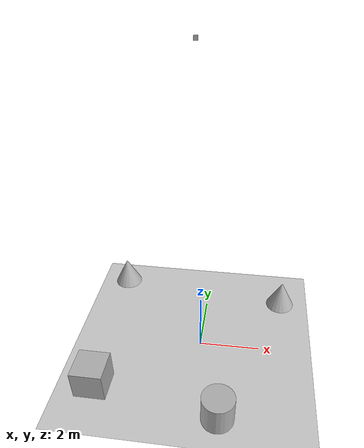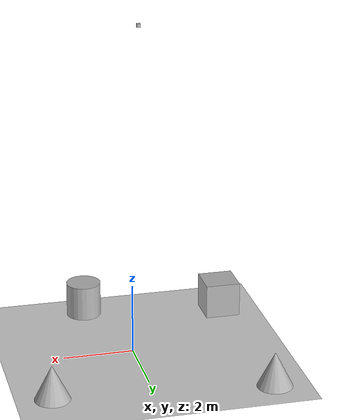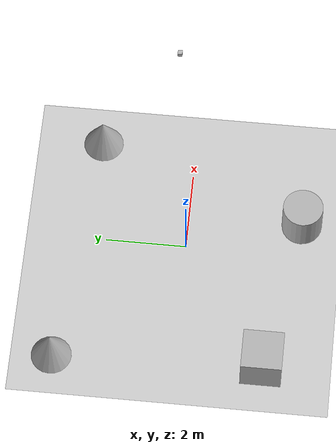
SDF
<sdf version="1.10">
 <world name="empty">
  <physics name="1ms" type="ignored">
   <max_step_size>0.001</max_step_size>
   <real_time_factor>1</real_time_factor>
   <real_time_update_rate>1000</real_time_update_rate>
  </physics>
  <plugin name="gz::sim::systems::Physics" filename="gz-sim-physics-system"/>
  <plugin name="gz::sim::systems::UserCommands" filename="gz-sim-user-commands-system"/>
  <plugin name="gz::sim::systems::SceneBroadcaster" filename="gz-sim-scene-broadcaster-system"/>
  <plugin name="gz::sim::systems::Contact" filename="gz-sim-contact-system"/>
  <gravity>0 0 -9.8000000000000007</gravity>
  <magnetic_field>5.5644999999999998e-06 2.2875799999999999e-05 -4.2388400000000002e-05</magnetic_field>
  <atmosphere type="adiabatic"/>
  <scene>
   <ambient>0.400000006 0.400000006 0.400000006 1</ambient>
   <background>0.699999988 0.699999988 0.699999988 1</background>
   <shadows>true</shadows>
  </scene>
  <model name="ground_plane">
   <static>true</static>
   <link name="link">
    <collision name="collision">
     <geometry><plane><normal>0 0 1</normal><size>100 100</size></plane></geometry>
    </collision>
    <visual name="visual">
     <geometry><plane><normal>0 0 1</normal><size>100 100</size></plane></geometry>
     <material>
      <ambient>0.800000012 0.800000012 0.800000012 1</ambient>
      <diffuse>0.800000012 0.800000012 0.800000012 1</diffuse>
      <specular>0.800000012 0.800000012 0.800000012 1</specular>
     </material>
    </visual>
    <inertial>
     <mass>1</mass>
     <inertia><ixx>1</ixx><ixy>0</ixy><ixz>0</ixz><iyy>1</iyy><iyz>0</iyz><izz>1</izz></inertia>
    </inertial>
   </link>
  </model>
  <model name="cone">
   <pose>2.743606549232906 2.3648827890543491 0.5 0 0 0</pose>
   <link name="cone_link">
    <inertial>
     <inertia>
      <ixx>0.074999999999999997</ixx>
      <ixy>0</ixy>
      <ixz>0</ixz>
      <iyy>0.074999999999999997</iyy>
      <iyz>0</iyz>
      <izz>0.074999999999999997</izz>
     </inertia>
     <mass>1</mass>
    </inertial>
    <collision name="cone_collision">
     <geometry><cone><radius>0.5</radius><length>1</length></cone></geometry>
    </collision>
    <visual name="cone_visual">
     <geometry><cone><radius>0.5</radius><length>1</length></cone></geometry>
     <material>
      <ambient>0.300000012 0.300000012 0.300000012 1</ambient>
      <diffuse>0.699999988 0.699999988 0.699999988 1</diffuse>
      <specular>1 1 1 1</specular>
     </material>
    </visual>
   </link>
   <static>false</static>
  </model>
  <model name="box">
   <pose>-3.1017676951650444 -2.1557709851962565 0.5 0 0 0</pose>
   <link name="box_link">
    <inertial>
     <inertia><ixx>0.16666</ixx><ixy>0</ixy><ixz>0</ixz><iyy>0.16666</iyy><iyz>0</iyz><izz>0.16666</izz></inertia>
     <mass>1</mass>
    </inertial>
    <collision name="box_collision"><geometry><box><size>1 1 1</size></box></geometry></collision>
    <visual name="box_visual">
     <geometry><box><size>1 1 1</size></box></geometry>
     <material>
      <ambient>0.300000012 0.300000012 0.300000012 1</ambient>
      <diffuse>0.699999988 0.699999988 0.699999988 1</diffuse>
      <specular>1 1 1 1</specular>
     </material>
    </visual>
   </link>
   <static>false</static>
  </model>
  <model name="cylinder">
   <pose>0.85750009246107783 -2.8465666803540017 0.5 0 0 0</pose>
   <link name="cylinder_link">
    <inertial>
     <inertia>
      <ixx>0.14580000000000001</ixx>
      <ixy>0</ixy>
      <ixz>0</ixz>
      <iyy>0.14580000000000001</iyy>
      <iyz>0</iyz>
      <izz>0.125</izz>
     </inertia>
     <mass>1</mass>
    </inertial>
    <collision name="cylinder_collision">
     <geometry><cylinder><radius>0.5</radius><length>1</length></cylinder></geometry>
    </collision>
    <visual name="cylinder_visual">
     <geometry><cylinder><radius>0.5</radius><length>1</length></cylinder></geometry>
     <material>
      <ambient>0.300000012 0.300000012 0.300000012 1</ambient>
      <diffuse>0.699999988 0.699999988 0.699999988 1</diffuse>
      <specular>1 1 1 1</specular>
     </material>
    </visual>
   </link>
   <static>false</static>
  </model>
  <model name="cone_0">
   <pose>-3.2806896817307227 3.0044577107294135 0.5 0 0 0</pose>
   <link name="cone_link">
    <inertial>
     <inertia>
      <ixx>0.074999999999999997</ixx>
      <ixy>0</ixy>
      <ixz>0</ixz>
      <iyy>0.074999999999999997</iyy>
      <iyz>0</iyz>
      <izz>0.074999999999999997</izz>
     </inertia>
     <mass>1</mass>
    </inertial>
    <collision name="cone_collision">
     <geometry><cone><radius>0.5</radius><length>1</length></cone></geometry>
    </collision>
    <visual name="cone_visual">
     <geometry><cone><radius>0.5</radius><length>1</length></cone></geometry>
     <material>
      <ambient>0.300000012 0.300000012 0.300000012 1</ambient>
      <diffuse>0.699999988 0.699999988 0.699999988 1</diffuse>
      <specular>1 1 1 1</specular>
     </material>
    </visual>
   </link>
   <static>false</static>
  </model>
  <light name="sun" type="directional">
   <pose>0 0 10 0 0 0</pose>
   <intensity>1</intensity>
   <direction>-0.5 0.10000000000000001 -0.90000000000000002</direction>
   <diffuse>0.800000012 0.800000012 0.800000012 1</diffuse>
   <specular>0.200000003 0.200000003 0.200000003 1</specular>
   <attenuation>
    <range>1000</range>
    <linear>0.01</linear>
    <constant>0.90000000000000002</constant>
    <quadratic>0.001</quadratic>
   </attenuation>
   <spot><inner_angle>0</inner_angle><outer_angle>0</outer_angle><falloff>0</falloff></spot>
  </light>
  <model name="aerial_rgbd_camera">
   <pose>-0.22981178760528564 0.081793002784252167 9.6025075912475586 3.1415899979989477 1.57079000476762 3.1415899979989477</pose>
   <link name="link">
    <pose>0.050000000000000003 0.050000000000000003 0.050000000000000003 0 0 0</pose>
    <inertial>
     <mass>0.1</mass>
     <inertia><ixx>0.000166667</ixx><iyy>0.000166667</iyy><izz>0.000166667</izz></inertia>
    </inertial>
    <collision name="collision"><geometry><box><size>0.1 0.1 0.1</size></box></geometry></collision>
    <visual name="visual"><geometry><box><size>0.1 0.1 0.1</size></box></geometry></visual>
    <sensor name="aerial_rgbd_camera" type="rgbd_camera">
     <update_rate>10</update_rate>
     <topic>/aerial_rgbd_camera</topic>
     <camera>
      <horizontal_fov>2</horizontal_fov>
      <image><width>1280</width><height>720</height><format>R8G8B8</format></image>
      <clip><near>0.1</near><far>20.0</far></clip>
      <noise><type>gaussian</type><mean>0.0</mean><stddev>0.005</stddev></noise>
      <gz_frame_id>aerial_rgbd_camera</gz_frame_id>
     </camera>
    </sensor>
   </link>
   <static>true</static>
  </model>
 </world>
</sdf>
